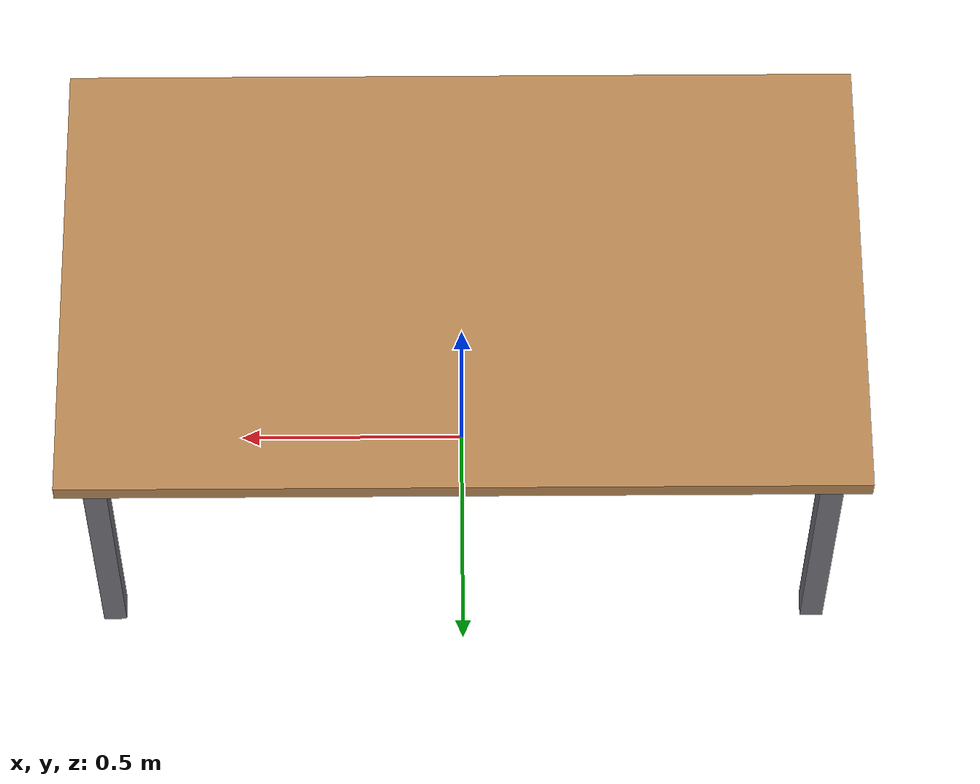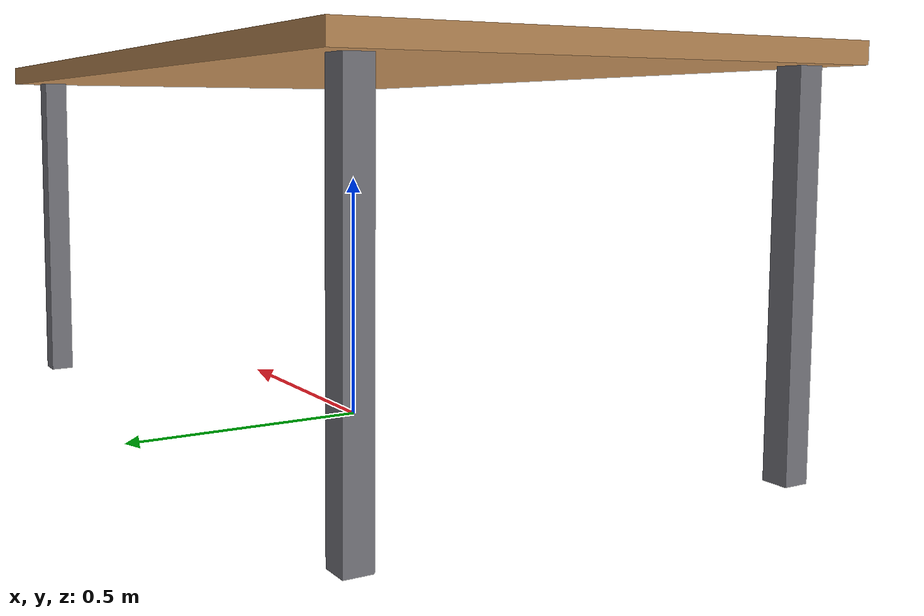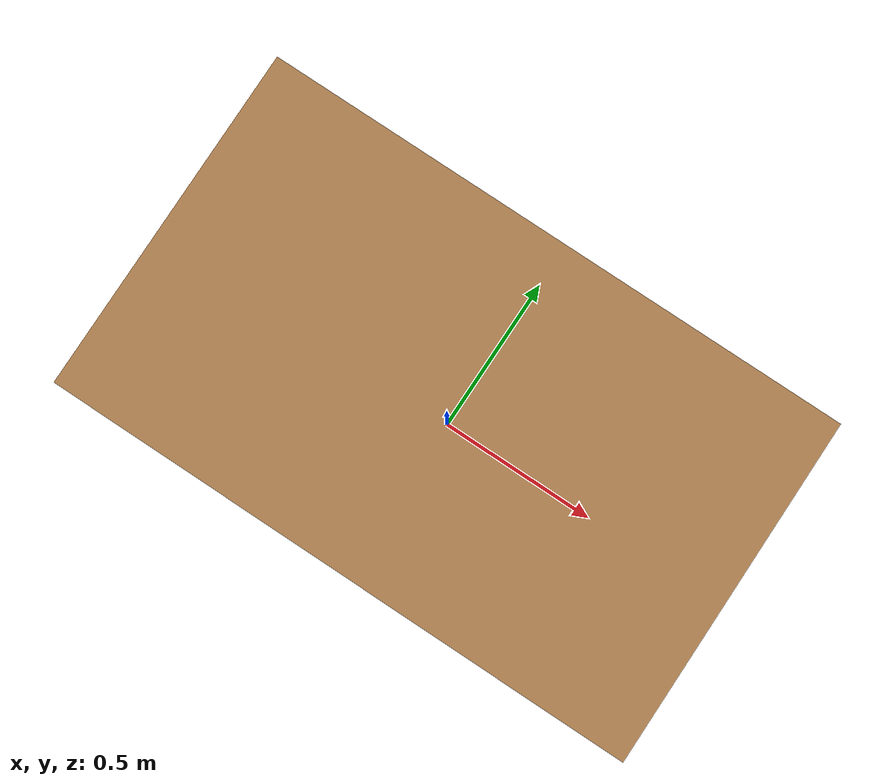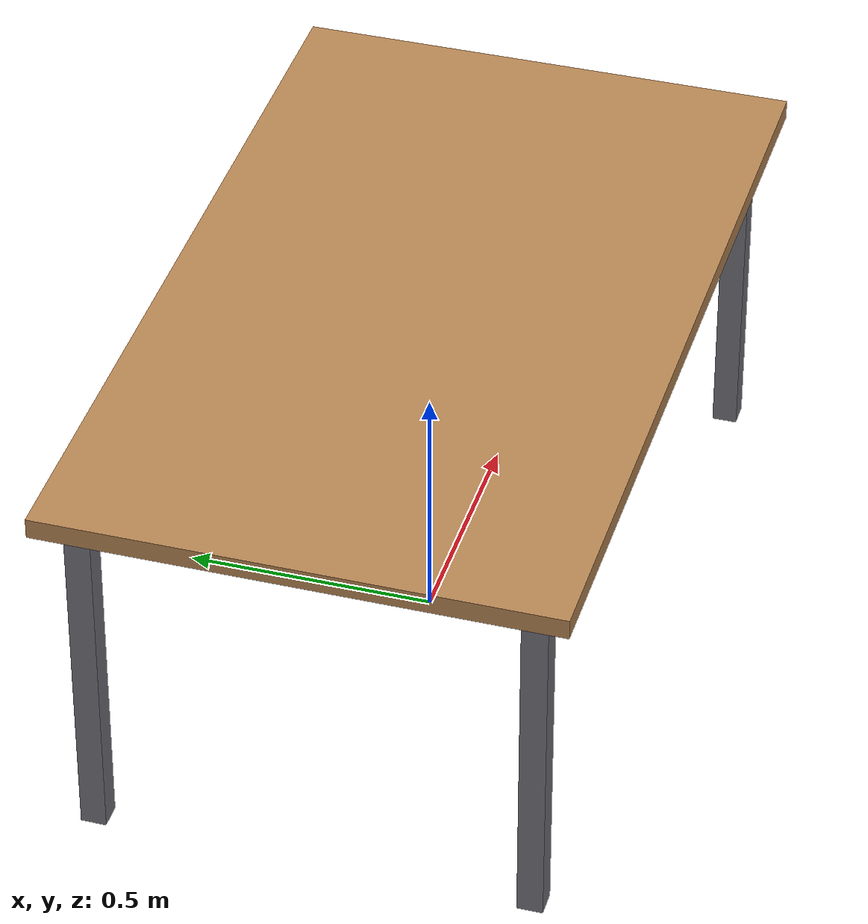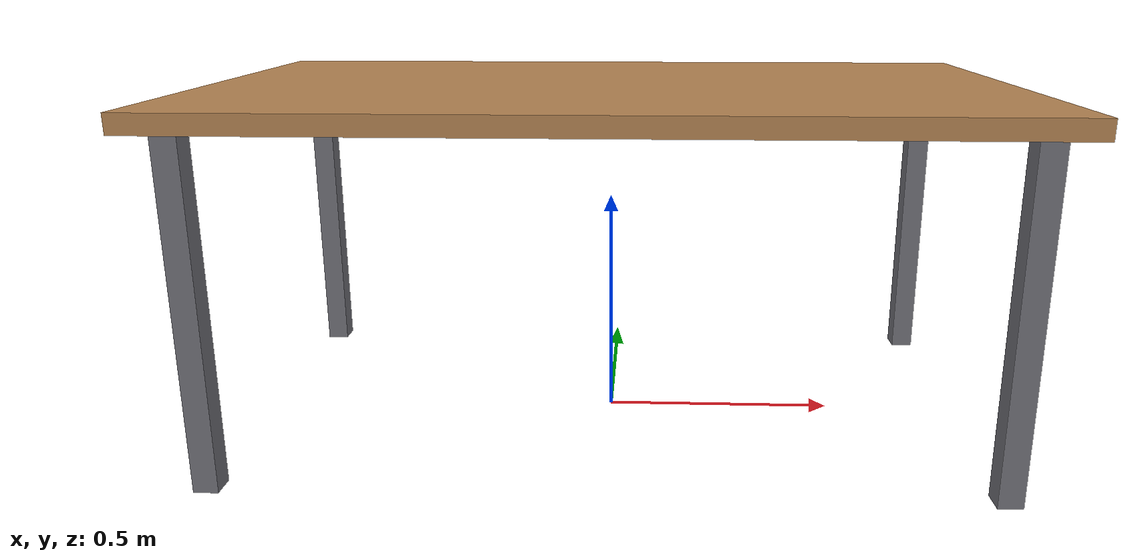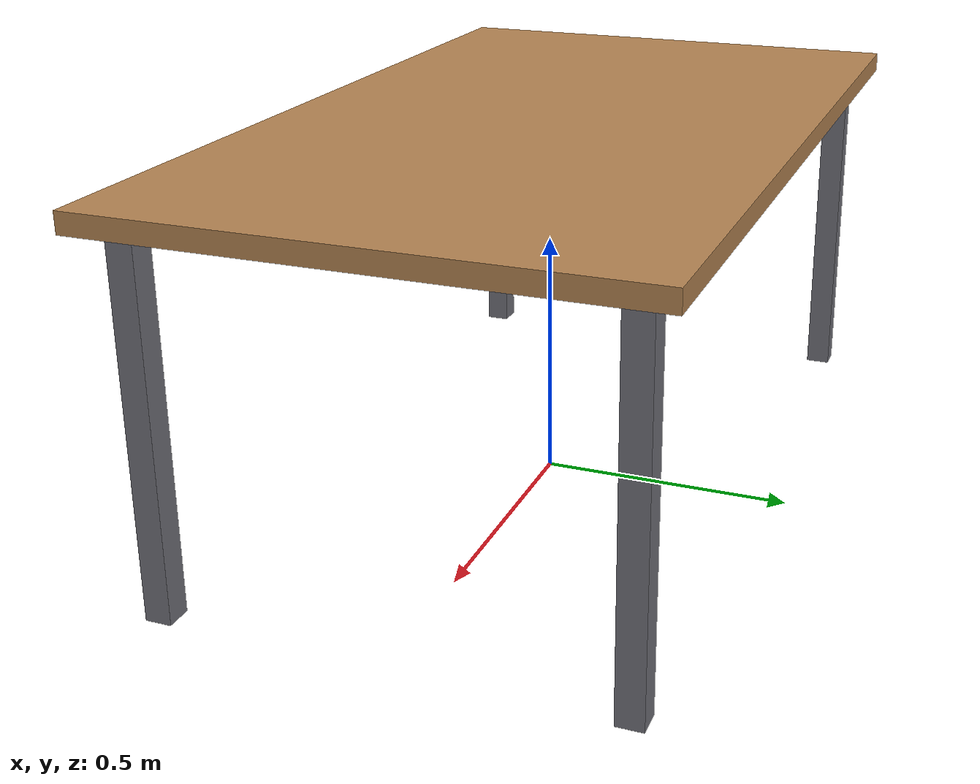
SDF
<?xml version="1.0" ?>
<sdf version="1.7">
  <model name="mesa">

    <static>true</static>

    <link name="link">

      <collision name="tablero_collision">
        <pose>0 0 0.73 0 0 0</pose>
        <geometry>
          <box>
            <size>1.70 1.00 0.04</size>
          </box>
        </geometry>
        <surface>
          <friction>
            <ode>
              <mu>0.8</mu>
              <mu2>0.8</mu2>
            </ode>
          </friction>
        </surface>
      </collision>

      <visual name="tablero_visual">
        <pose>0 0 0.73 0 0 0</pose>
        <geometry>
          <box>
            <size>1.70 1.00 0.04</size>
          </box>
        </geometry>
        <material>
          <ambient>0.62 0.45 0.28 1</ambient>
          <diffuse>0.72 0.53 0.33 1</diffuse>
          <specular>0.15 0.15 0.15 1</specular>
        </material>
      </visual>

      <!-- Pata 1: delantera izquierda -->
      <collision name="pata_1_collision">
        <pose>0.775 0.425 0.355 0 0 0</pose>
        <geometry>
          <box><size>0.05 0.05 0.71</size></box>
        </geometry>
      </collision>
      <visual name="pata_1_visual">
        <pose>0.775 0.425 0.355 0 0 0</pose>
        <geometry>
          <box><size>0.05 0.05 0.71</size></box>
        </geometry>
        <material>
          <ambient>0.35 0.35 0.38 1</ambient>
          <diffuse>0.45 0.45 0.48 1</diffuse>
        </material>
      </visual>

      <!-- Pata 2: delantera derecha -->
      <collision name="pata_2_collision">
        <pose>0.775 -0.425 0.355 0 0 0</pose>
        <geometry>
          <box><size>0.05 0.05 0.71</size></box>
        </geometry>
      </collision>
      <visual name="pata_2_visual">
        <pose>0.775 -0.425 0.355 0 0 0</pose>
        <geometry>
          <box><size>0.05 0.05 0.71</size></box>
        </geometry>
        <material>
          <ambient>0.35 0.35 0.38 1</ambient>
          <diffuse>0.45 0.45 0.48 1</diffuse>
        </material>
      </visual>

      <!-- Pata 3: trasera izquierda -->
      <collision name="pata_3_collision">
        <pose>-0.775 0.425 0.355 0 0 0</pose>
        <geometry>
          <box><size>0.05 0.05 0.71</size></box>
        </geometry>
      </collision>
      <visual name="pata_3_visual">
        <pose>-0.775 0.425 0.355 0 0 0</pose>
        <geometry>
          <box><size>0.05 0.05 0.71</size></box>
        </geometry>
        <material>
          <ambient>0.35 0.35 0.38 1</ambient>
          <diffuse>0.45 0.45 0.48 1</diffuse>
        </material>
      </visual>

      <!-- Pata 4: trasera derecha -->
      <collision name="pata_4_collision">
        <pose>-0.775 -0.425 0.355 0 0 0</pose>
        <geometry>
          <box><size>0.05 0.05 0.71</size></box>
        </geometry>
      </collision>
      <visual name="pata_4_visual">
        <pose>-0.775 -0.425 0.355 0 0 0</pose>
        <geometry>
          <box><size>0.05 0.05 0.71</size></box>
        </geometry>
        <material>
          <ambient>0.35 0.35 0.38 1</ambient>
          <diffuse>0.45 0.45 0.48 1</diffuse>
        </material>
      </visual>

    </link>
  </model>
</sdf>
